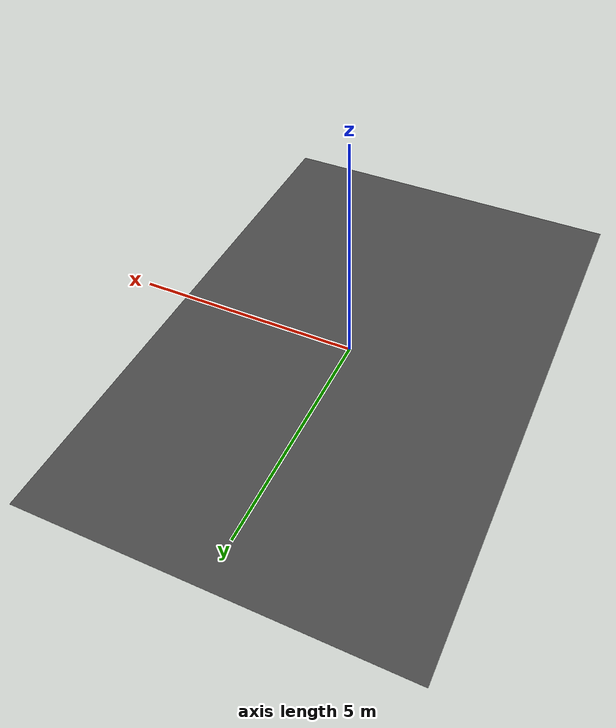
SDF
<?xml version="1.0"?>
<sdf version="1.6">
  <model name="levine">
    <static>true</static>
    <!-- 视觉层（薄） -->
    <link name="visual_layer">
      <pose>0 0 0.01 0 0 0</pose>
      <visual name="visual">
        <geometry>
          <box>
            <size>8 12 0.001</size>
          </box>
        </geometry>
        <material>
          <script>
            <uri>file:///home/song/ros2_ws_car/src/f1tenth_simulator/urdf/levine/</uri>
            <name>MyTrack/RoadTexture</name>
          </script>
        </material>
      </visual>
    </link>

    <!-- 碰撞层（厚） -->
    <link name="collision_layer">
      <pose>0 0 -0.1 0 0 0</pose>
      <collision name="collision">
        <geometry>
          <box>
            <size>8 12 0.2</size>
          </box>
        </geometry>
      </collision>
    </link>
  </model>
</sdf>
